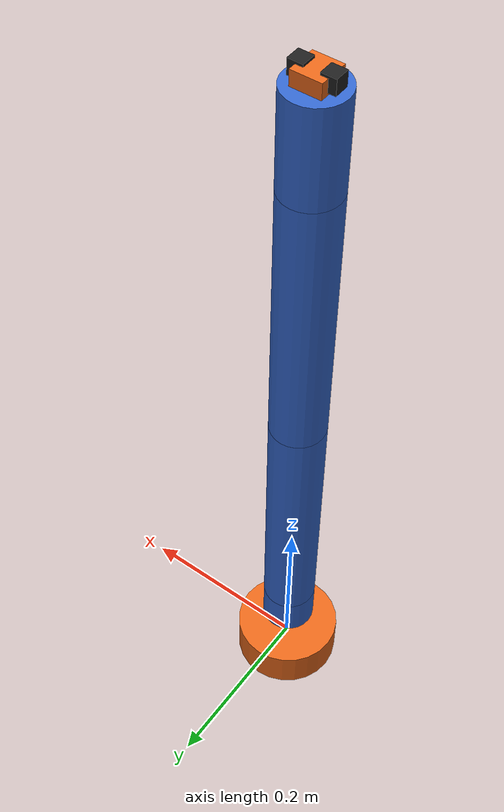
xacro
<?xml version="1.0"?>
<robot name="arm"
       xmlns:xacro="http://www.ros.org/wiki/xacro">

  <!-- PROPERTIES -->

  <!-- link lengths -->
  <xacro:property name="L1" value="0.05"/>
  <xacro:property name="L2" value="0.3"/>
  <xacro:property name="L3" value="0.3"/>
  <xacro:property name="L4" value="0.10"/>

  <!-- visual size -->
  <xacro:property name="radius" value="0.03"/>

  <!-- MATERIALS -->

  <material name="blue">
    <color rgba="0.2 0.4 0.8 1"/>
  </material>

  <material name="orange">
    <color rgba="0.9 0.4 0.1 1"/>
  </material>

  <!-- MACRO: CYLINDER LINK -->

  <xacro:macro name="cylinder_link" params="name length">

    <link name="${name}">
      <visual>
        <!-- center-based geometry -->
        <origin xyz="0 0 ${length/2}"/>
        <geometry>
          <cylinder radius="${radius}"
                    length="${length}"/>
        </geometry>
        <material name="blue"/>
      </visual>

      <collision>
        <origin xyz="0 0 ${length/2}"/>
        <geometry>
          <cylinder radius="${radius}"
                    length="${length}"/>
        </geometry>
      </collision>

    </link>

  </xacro:macro>

  <!-- BASE -->

  <link name="base_link">
    <visual>
      <geometry>
        <cylinder radius="0.06" length="0.05"/>
      </geometry>
      <material name="orange"/>
    </visual>
  </link>

  <!-- LINKS -->

  <xacro:cylinder_link name="link_1" length="${L1}"/>
  <xacro:cylinder_link name="link_2" length="${L2}"/>
  <xacro:cylinder_link name="link_3" length="${L3}"/>
  <xacro:cylinder_link name="link_4" length="${L4}"/>

    <!-- GRIPPER BASE -->
  <link name="gripper_base">
    <visual>
      <geometry>
        <box size="0.03 0.03 0.03"/>
      </geometry>
      <material name="orange"/>
    </visual>
  </link>

  <!-- GRIPPER LEFT FINGER -->
  <link name="gripper_left_finger">
    <visual>
      <geometry>
        <box size="0.015 0.015 0.015"/>
      </geometry>
      <material name="black"/>
    </visual>
  </link>

  <!-- GRIPPER RIGHT FINGER -->
  <link name="gripper_right_finger">
    <visual>
      <geometry>
        <box size="0.015 0.015 0.015"/>
      </geometry>
      <material name="black"/>
    </visual>
  </link>

  <!-- JOINTS -->

  <!-- BASE ROTATION -->
  <joint name="joint_1" type="revolute">
    <parent link="base_link"/>
    <child link="link_1"/>

    <origin xyz="0 0 0.05"/>

    <!-- rotate around Z -->
    <axis xyz="0 0 1"/>

    <limit lower="-3.14"
           upper="3.14"
           effort="20"
           velocity="1"/>
  </joint>

  <!-- SHOULDER -->
  <joint name="joint_2" type="revolute">
    <parent link="link_1"/>
    <child link="link_2"/>

    <origin xyz="0 0 ${L1}"/>

    <!-- pitch -->
    <axis xyz="0 1 0"/>

    <limit lower="-3.14"
           upper="3.14"
           effort="20"
           velocity="1"/>
  </joint>

  <!-- ELBOW -->
  <joint name="joint_3" type="revolute">
    <parent link="link_2"/>
    <child link="link_3"/>

    <origin xyz="0 0 ${L2}"/>

    <axis xyz="0 1 0"/>

    <limit lower="-3.14"
           upper="3.14"
           effort="20"
           velocity="1"/>
  </joint>

  <!-- WRIST PITCH -->
  <joint name="joint_4" type="revolute">
    <parent link="link_3"/>
    <child link="link_4"/>

    <origin xyz="0 0 ${L3}"/>

    <axis xyz="0 1 0"/>

    <limit lower="-3.14"
           upper="3.14"
           effort="10"
           velocity="1"/>
  </joint>

  <!-- WRIST ROLL -->
  <joint name="joint_5" type="revolute">
    <parent link="link_4"/>
    <child link="gripper_base"/>

    <origin xyz="0 0 ${L4}"/>

    <!-- roll -->
    <axis xyz="0 0 1"/>

    <limit lower="-3.14"
           upper="3.14"
           effort="10"
           velocity="1"/>
  </joint>

  <!-- GRIPPER LEFT FINGER -->
  <joint name="gripper_left_finger_joint" type="prismatic">
    <parent link="gripper_base"/>
    <child link="gripper_left_finger"/>
    <origin xyz="0.015 0 0.01"/>
    <axis xyz="1 0 0"/>
    <limit effort="5" lower="0" upper="0.03" velocity="0.02"/>
  </joint>

  <!-- GRIPPER RIGHT FINGER -->
  <joint name="gripper_right_finger_joint" type="prismatic">
    <parent link="gripper_base"/>
    <child link="gripper_right_finger"/>
    <origin xyz="-0.015 0 0.01"/>
    <axis xyz="-1 0 0"/>
    <limit effort="5" lower="0" upper="0.03" velocity="0.02"/>
  </joint>

  <ros2_control name="FakeSystem" type="system">

    <hardware>
      <plugin>mock_components/GenericSystem</plugin>
      <param name="fake_sensor_commands">true</param>
    </hardware>

    <joint name="joint_1">
      <command_interface name="position"/>
      <state_interface name="position"/>
      <state_interface name="velocity"/>
    </joint>

    <joint name="joint_2">
      <command_interface name="position"/>
      <state_interface name="position"/>
      <state_interface name="velocity"/>
    </joint>

    <joint name="joint_3">
      <command_interface name="position"/>
      <state_interface name="position"/>
      <state_interface name="velocity"/>
    </joint>

    <joint name="joint_4">
      <command_interface name="position"/>
      <state_interface name="position"/>
      <state_interface name="velocity"/>
    </joint>

    <joint name="joint_5">
      <command_interface name="position"/>
      <state_interface name="position"/>
      <state_interface name="velocity"/>
    </joint>

    <joint name="gripper_left_finger_joint">
      <command_interface name="position"/>
      <state_interface name="position"/>
      <state_interface name="velocity"/>
    </joint>

    <joint name="gripper_right_finger_joint">
      <command_interface name="position"/>
      <state_interface name="position"/>
      <state_interface name="velocity"/>
    </joint>

  </ros2_control>

</robot>
